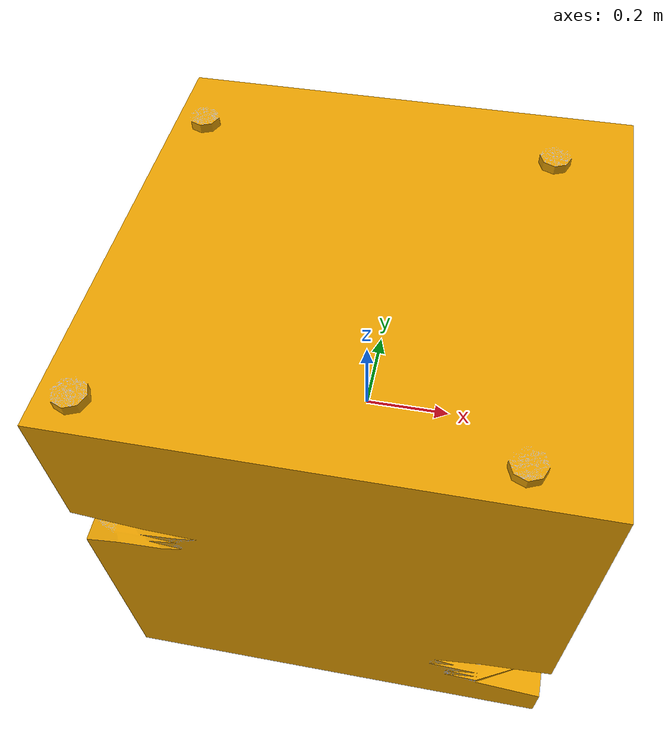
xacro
<?xml version="1.0"?>
<robot name="obstacle" xmlns:xacro="http://www.ros.org/wiki/xacro">

  <!-- Arguments -->
  <xacro:arg name="namespace" default="obstacle" />
  <xacro:arg name="traj_x" default="sin(t)" />
  <xacro:arg name="traj_y" default="cos(t)" />
  <xacro:arg name="traj_z" default="2.0" />
  <xacro:arg name="size" default="1.0" />

  <!-- Color definitions -->
  <material name="grey">
    <color rgba="0.5 0.5 0.5 1"/>
  </material>

  <link name="base_link">
    <inertial>
      <mass value="0.200" />
      <origin xyz="0 0 0" rpy="0 0 0" />
      <inertia ixx="5.8083e-4" ixy="0" ixz="0" iyy="3.0833e-5" iyz="0" izz="5.9083e-4" />
    </inertial>
    <visual>
      <origin xyz="0 0 0" rpy="0 0 0" />
      <geometry>
        <mesh filename="$(find sando)/meshes/obstacles/model4.dae" scale="$(arg size) $(arg size) $(arg size)" />
      </geometry>
    </visual>
    <collision>
      <geometry>
        <box size="1.0 1.0 1.0"/>
      </geometry>
    </collision>
  </link>

  <!-- Disable gravity for the obstacle -->
  <gazebo reference="base_link">
    <gravity>0</gravity>
  </gazebo>

  <!-- Custom plugin to move the obstacle along a trefoil trajectory (ref src/sim/move_model.cpp) -->
  <!-- Note: this plugin starts a ros2 node inside and publishes tf data -->
  <gazebo>
    <plugin name="move_model" filename="libmove_model.so">
      <traj_x>$(arg traj_x)</traj_x>
      <traj_y>$(arg traj_y)</traj_y>
      <traj_z>$(arg traj_z)</traj_z>
    </plugin>
  </gazebo>

</robot>
